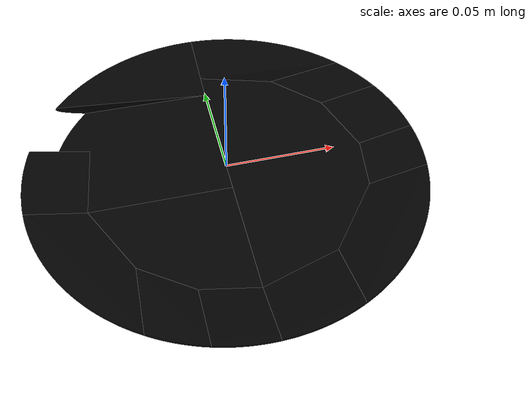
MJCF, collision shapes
<mujoco model="plate_46">
  <asset>
    <mesh file="visual/model_normalized_0.obj" name="model_normalized_0_vis" scale="0.175 0.175 0.175" refquat="1.0 0.0 0.0 0.0" />
    <mesh file="visual/model_normalized_1.obj" name="model_normalized_1_vis" scale="0.175 0.175 0.175" refquat="1.0 0.0 0.0 0.0" />
    <texture type="2d" name="image0" file="visual/image0.png" />
    <material name="pasted__phong2" texture="image0" specular="0.5" shininess="0.359999993" />
    <material name="phong1.004" texture="image0" specular="0.5" shininess="0.359999993" />
    <mesh file="collision/model_collision_0.obj" name="model_collision_0" scale="0.175 0.175 0.175" refquat="1.0 0.0 0.0 0.0" />
    <mesh file="collision/model_collision_1.obj" name="model_collision_1" scale="0.175 0.175 0.175" refquat="1.0 0.0 0.0 0.0" />
    <mesh file="collision/model_collision_2.obj" name="model_collision_2" scale="0.175 0.175 0.175" refquat="1.0 0.0 0.0 0.0" />
    <mesh file="collision/model_collision_3.obj" name="model_collision_3" scale="0.175 0.175 0.175" refquat="1.0 0.0 0.0 0.0" />
    <mesh file="collision/model_collision_4.obj" name="model_collision_4" scale="0.175 0.175 0.175" refquat="1.0 0.0 0.0 0.0" />
    <mesh file="collision/model_collision_5.obj" name="model_collision_5" scale="0.175 0.175 0.175" refquat="1.0 0.0 0.0 0.0" />
    <mesh file="collision/model_collision_6.obj" name="model_collision_6" scale="0.175 0.175 0.175" refquat="1.0 0.0 0.0 0.0" />
    <mesh file="collision/model_collision_7.obj" name="model_collision_7" scale="0.175 0.175 0.175" refquat="1.0 0.0 0.0 0.0" />
    <mesh file="collision/model_collision_8.obj" name="model_collision_8" scale="0.175 0.175 0.175" refquat="1.0 0.0 0.0 0.0" />
    <mesh file="collision/model_collision_9.obj" name="model_collision_9" scale="0.175 0.175 0.175" refquat="1.0 0.0 0.0 0.0" />
    <mesh file="collision/model_collision_10.obj" name="model_collision_10" scale="0.175 0.175 0.175" refquat="1.0 0.0 0.0 0.0" />
    <mesh file="collision/model_collision_11.obj" name="model_collision_11" scale="0.175 0.175 0.175" refquat="1.0 0.0 0.0 0.0" />
    <mesh file="collision/model_collision_12.obj" name="model_collision_12" scale="0.175 0.175 0.175" refquat="1.0 0.0 0.0 0.0" />
    <mesh file="collision/model_collision_13.obj" name="model_collision_13" scale="0.175 0.175 0.175" refquat="1.0 0.0 0.0 0.0" />
  </asset>
  <default>
    <default class="region">
      <geom group="1" conaffinity="0" contype="0" rgba="0 1 0 0" />
    </default>
  </default>
  <worldbody>
    <body>
      <body name="object">
        <geom density="0" type="mesh" mesh="model_normalized_0_vis" conaffinity="0" contype="0" group="2" material="phong1.004" mass="0.075" />
        <geom density="0" type="mesh" mesh="model_normalized_1_vis" conaffinity="0" contype="0" group="2" material="pasted__phong2" />
        <geom class="region" name="reg_bbox" type="box" pos="6.649999999899791e-08 7.000000001172734e-09 -0.00023602862499999978" size="0.08618622249999999 0.086186548 0.004532894625" />
        <geom solimp="0.998 0.998 0.001" solref="0.004 1" density="0" friction="0.6 0.03 0.003" type="mesh" group="3" rgba="0 0 0 0" mesh="model_collision_0" condim="6" priority="1" />
        <geom solimp="0.998 0.998 0.001" solref="0.004 1" density="0" friction="0.6 0.03 0.003" type="mesh" group="3" rgba="0 0 0 0" mesh="model_collision_1" condim="6" priority="1" />
        <geom solimp="0.998 0.998 0.001" solref="0.004 1" density="0" friction="0.6 0.03 0.003" type="mesh" group="3" rgba="0 0 0 0" mesh="model_collision_2" condim="6" priority="1" />
        <geom solimp="0.998 0.998 0.001" solref="0.004 1" density="0" friction="0.6 0.03 0.003" type="mesh" group="3" rgba="0 0 0 0" mesh="model_collision_3" condim="6" priority="1" />
        <geom solimp="0.998 0.998 0.001" solref="0.004 1" density="0" friction="0.6 0.03 0.003" type="mesh" group="3" rgba="0 0 0 0" mesh="model_collision_4" condim="6" priority="1" />
        <geom solimp="0.998 0.998 0.001" solref="0.004 1" density="0" friction="0.6 0.03 0.003" type="mesh" group="3" rgba="0 0 0 0" mesh="model_collision_5" condim="6" priority="1" />
        <geom solimp="0.998 0.998 0.001" solref="0.004 1" density="0" friction="0.6 0.03 0.003" type="mesh" group="3" rgba="0 0 0 0" mesh="model_collision_6" condim="6" priority="1" />
        <geom solimp="0.998 0.998 0.001" solref="0.004 1" density="0" friction="0.6 0.03 0.003" type="mesh" group="3" rgba="0 0 0 0" mesh="model_collision_7" condim="6" priority="1" />
        <geom solimp="0.998 0.998 0.001" solref="0.004 1" density="0" friction="0.6 0.03 0.003" type="mesh" group="3" rgba="0 0 0 0" mesh="model_collision_8" condim="6" priority="1" />
        <geom solimp="0.998 0.998 0.001" solref="0.004 1" density="0" friction="0.6 0.03 0.003" type="mesh" group="3" rgba="0 0 0 0" mesh="model_collision_9" condim="6" priority="1" />
        <geom solimp="0.998 0.998 0.001" solref="0.004 1" density="0" friction="0.6 0.03 0.003" type="mesh" group="3" rgba="0 0 0 0" mesh="model_collision_10" condim="6" priority="1" />
        <geom solimp="0.998 0.998 0.001" solref="0.004 1" density="0" friction="0.6 0.03 0.003" type="mesh" group="3" rgba="0 0 0 0" mesh="model_collision_11" condim="6" priority="1" />
        <geom solimp="0.998 0.998 0.001" solref="0.004 1" density="0" friction="0.6 0.03 0.003" type="mesh" group="3" rgba="0 0 0 0" mesh="model_collision_12" condim="6" priority="1" />
        <geom solimp="0.998 0.998 0.001" solref="0.004 1" density="0" friction="0.6 0.03 0.003" type="mesh" group="3" rgba="0 0 0 0" mesh="model_collision_13" condim="6" priority="1" />
      </body>
    </body>
  </worldbody>
</mujoco>
